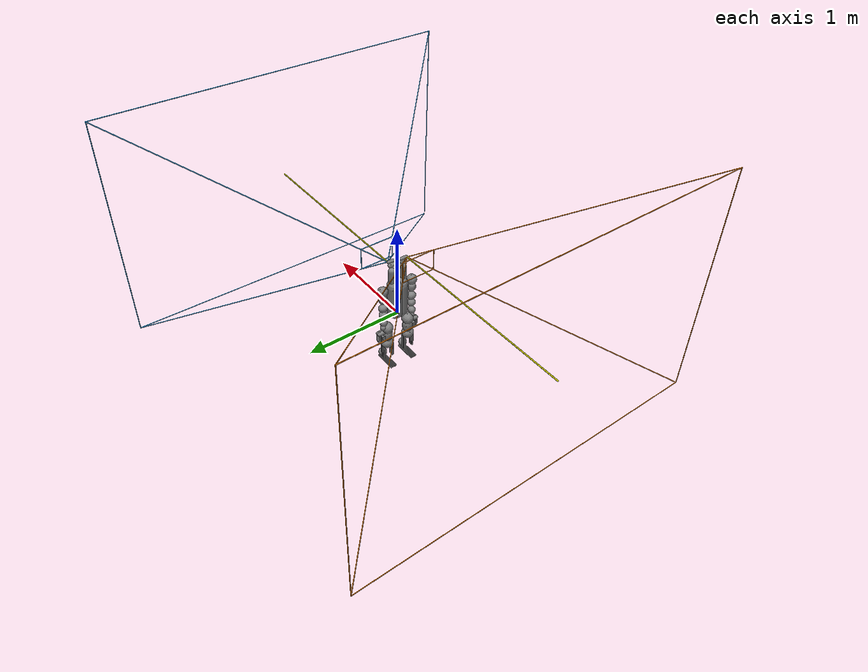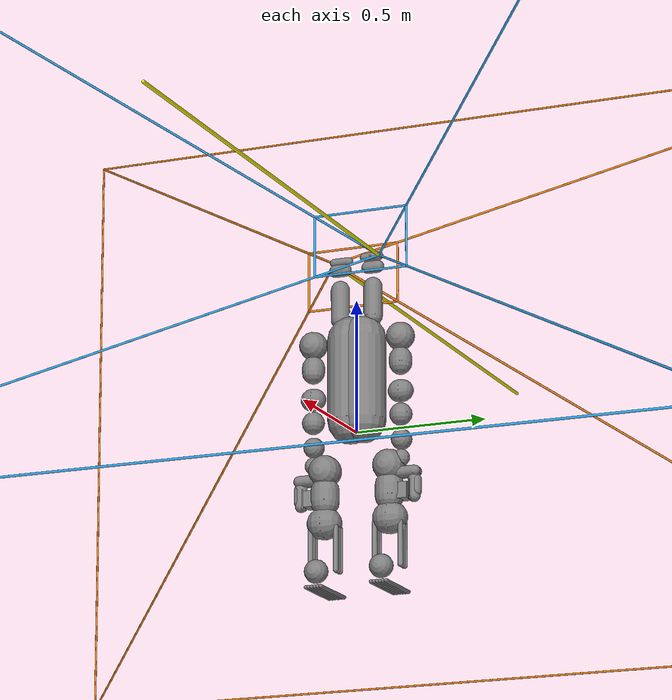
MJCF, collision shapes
<mujoco model="humanoid_v2">
  <compiler angle="radian" meshdir="../../../../asset/create/meshes"/>

  <default>
    <default class="humanoid_v2">
      <default class="visual">
        <geom type="mesh" contype="0" conaffinity="0" group="2" material="silver"/>
      </default>
      <default class="collision">
        <geom group="3"/>
      </default>
    </default>
    <default class="L_main">
      <default class="L_parallel_gripper">
        <default class="L_visual">
          <geom type="mesh" contype="0" conaffinity="0" group="2" material="silver"/>
        </default>
        <default class="L_collision">
          <geom group="3"/>
        </default>
      </default>
    </default>
    <default class="R_main">
      <default class="R_parallel_gripper">
        <default class="R_visual">
          <geom type="mesh" contype="0" conaffinity="0" group="2" material="silver"/>
        </default>
        <default class="R_collision">
          <geom group="3"/>
        </default>
      </default>
    </default>
    <default class="cam_main">
      <default class="cam_head_camera_dual">
        <default class="cam_visual">
          <geom type="mesh" contype="0" conaffinity="0" group="2" material="silver"/>
        </default>
        <default class="cam_collision">
          <geom group="3"/>
        </default>
      </default>
    </default>
  </default>

  <asset>
    <texture type="2d" colorspace="linear" name="L_tag_80_tex" file="../../../../asset/duke_v2/parallel_gripper/meshes/tags/tag_80.png"/>
    <texture type="2d" colorspace="linear" name="L_tag_81_tex" file="../../../../asset/duke_v2/parallel_gripper/meshes/tags/tag_81.png"/>
    <texture type="2d" colorspace="linear" name="L_tag_82_tex" file="../../../../asset/duke_v2/parallel_gripper/meshes/tags/tag_82.png"/>
    <texture type="2d" colorspace="linear" name="L_tag_83_tex" file="../../../../asset/duke_v2/parallel_gripper/meshes/tags/tag_83.png"/>
    <texture type="2d" colorspace="linear" name="L_tag_84_tex" file="../../../../asset/duke_v2/parallel_gripper/meshes/tags/tag_84.png"/>
    <texture type="2d" colorspace="linear" name="L_tag_85_tex" file="../../../../asset/duke_v2/parallel_gripper/meshes/tags/tag_85.png"/>
    <texture type="2d" colorspace="linear" name="L_tag_86_tex" file="../../../../asset/duke_v2/parallel_gripper/meshes/tags/tag_86.png"/>
    <texture type="2d" colorspace="linear" name="L_tag_87_tex" file="../../../../asset/duke_v2/parallel_gripper/meshes/tags/tag_87.png"/>
    <texture type="2d" colorspace="linear" name="R_tag_90_tex" file="../../../../asset/duke_v2/parallel_gripper/meshes/tags/tag_90.png"/>
    <texture type="2d" colorspace="linear" name="R_tag_91_tex" file="../../../../asset/duke_v2/parallel_gripper/meshes/tags/tag_91.png"/>
    <texture type="2d" colorspace="linear" name="R_tag_92_tex" file="../../../../asset/duke_v2/parallel_gripper/meshes/tags/tag_92.png"/>
    <texture type="2d" colorspace="linear" name="R_tag_93_tex" file="../../../../asset/duke_v2/parallel_gripper/meshes/tags/tag_93.png"/>
    <texture type="2d" colorspace="linear" name="R_tag_94_tex" file="../../../../asset/duke_v2/parallel_gripper/meshes/tags/tag_94.png"/>
    <texture type="2d" colorspace="linear" name="R_tag_95_tex" file="../../../../asset/duke_v2/parallel_gripper/meshes/tags/tag_95.png"/>
    <texture type="2d" colorspace="linear" name="R_tag_96_tex" file="../../../../asset/duke_v2/parallel_gripper/meshes/tags/tag_96.png"/>
    <texture type="2d" colorspace="linear" name="R_tag_97_tex" file="../../../../asset/duke_v2/parallel_gripper/meshes/tags/tag_97.png"/>
    <material name="silver" rgba="0.75 0.75 0.75 1"/>
    <material name="blue" rgba="0 0 0.8 1"/>
    <material name="black" rgba="0 0 0 1"/>
    <material name="purple" rgba="0.8 0 0.8 1"/>
    <material name="light_grey" rgba="0.4 0.4 0.4 1"/>
    <material name="dark_grey" rgba="0.3 0.3 0.3 1"/>
    <material name="white"/>
    <material name="L_silver" rgba="0.75 0.75 0.75 1"/>
    <material name="L_base_mat" rgba="0.75 0.75 0.75 1"/>
    <material name="L_left_rack_mat" rgba="0.3 0.55 0.85 1"/>
    <material name="L_right_rack_mat" rgba="0.65 0.4 0.8 1"/>
    <material name="L_tag_80_mat" texture="L_tag_80_tex" specular="0" shininess="0"/>
    <material name="L_tag_81_mat" texture="L_tag_81_tex" specular="0" shininess="0"/>
    <material name="L_tag_82_mat" texture="L_tag_82_tex" specular="0" shininess="0"/>
    <material name="L_tag_83_mat" texture="L_tag_83_tex" specular="0" shininess="0"/>
    <material name="L_tag_84_mat" texture="L_tag_84_tex" specular="0" shininess="0"/>
    <material name="L_tag_85_mat" texture="L_tag_85_tex" specular="0" shininess="0"/>
    <material name="L_tag_86_mat" texture="L_tag_86_tex" specular="0" shininess="0"/>
    <material name="L_tag_87_mat" texture="L_tag_87_tex" specular="0" shininess="0"/>
    <material name="R_silver" rgba="0.75 0.75 0.75 1"/>
    <material name="R_base_mat" rgba="0.75 0.75 0.75 1"/>
    <material name="R_left_rack_mat" rgba="0.3 0.55 0.85 1"/>
    <material name="R_right_rack_mat" rgba="0.65 0.4 0.8 1"/>
    <material name="R_tag_90_mat" texture="R_tag_90_tex" specular="0" shininess="0"/>
    <material name="R_tag_91_mat" texture="R_tag_91_tex" specular="0" shininess="0"/>
    <material name="R_tag_92_mat" texture="R_tag_92_tex" specular="0" shininess="0"/>
    <material name="R_tag_93_mat" texture="R_tag_93_tex" specular="0" shininess="0"/>
    <material name="R_tag_94_mat" texture="R_tag_94_tex" specular="0" shininess="0"/>
    <material name="R_tag_95_mat" texture="R_tag_95_tex" specular="0" shininess="0"/>
    <material name="R_tag_96_mat" texture="R_tag_96_tex" specular="0" shininess="0"/>
    <material name="R_tag_97_mat" texture="R_tag_97_tex" specular="0" shininess="0"/>
    <material name="cam_silver" rgba="0.75 0.75 0.75 1"/>
    <material name="cam_blue" rgba="0 0 0.8 1"/>
    <material name="cam_black" rgba="0 0 0 1"/>
    <material name="cam_purple" rgba="0.8 0 0.8 1"/>
    <material name="cam_light_grey" rgba="0.4 0.4 0.4 1"/>
    <material name="cam_dark_grey" rgba="0.3 0.3 0.3 1"/>
    <material name="cam_white"/>
    <mesh name="base_link" file="base_link.stl" scale="0.001 0.001 0.001"/>
    <mesh name="waist_high_res" content_type="model/obj" file="waist.obj" scale="0.001 0.001 0.001"/>
    <mesh name="hip_2_high_res" file="hip_2.obj" scale="0.001 0.001 0.001"/>
    <mesh name="hip_3_high_res" file="hip_3.obj" scale="0.001 0.001 0.001"/>
    <mesh name="knee_high_res" content_type="model/obj" file="knee.obj" scale="0.001 0.001 0.001"/>
    <mesh name="shank_high_res" file="shank.obj" scale="0.001 0.001 0.001"/>
    <mesh name="ankle_1_high_res" file="ankle_1.obj" scale="0.001 0.001 0.001"/>
    <mesh name="ankle_2_high_res" file="ankle_2.obj" scale="0.001 0.001 0.001"/>
    <mesh name="shoulder_2_high_res" file="shoulder_2.obj" scale="0.001 0.001 0.001"/>
    <mesh name="shoulder_3" file="shoulder_3.obj" scale="0.001 0.001 0.001"/>
    <mesh name="elbow_high_res" file="elbow.obj" scale="0.001 0.001 0.001"/>
    <mesh name="wrist_1_high_res" file="wrist_1.obj" scale="0.001 0.001 0.001"/>
    <mesh name="wrist_2_high_res" file="wrist_2.obj" scale="0.001 0.001 0.001"/>
    <mesh name="wrist_3_high_res" file="wrist_3.obj" scale="0.001 0.001 0.001"/>
    <mesh name="end_effector_attachment_high_res" file="end_effector_attachment.obj" scale="0.001 0.001 0.001"/>
    <mesh name="L_base" file="../../duke_v2/parallel_gripper/meshes/base.obj" scale="0.001 0.001 0.001"/>
    <mesh name="L_left_rack" file="../../duke_v2/parallel_gripper/meshes/left_rack.obj" scale="0.001 0.001 0.001"/>
    <mesh name="L_right_rack" file="../../duke_v2/parallel_gripper/meshes/right_rack.obj" scale="0.001 0.001 0.001"/>
    <mesh name="L_tag_80_quad" file="../../duke_v2/parallel_gripper/meshes/tags/tag_80.obj" inertia="shell" scale="0.001 0.001 0.001"/>
    <mesh name="L_tag_81_quad" file="../../duke_v2/parallel_gripper/meshes/tags/tag_81.obj" inertia="shell" scale="0.001 0.001 0.001"/>
    <mesh name="L_tag_82_quad" file="../../duke_v2/parallel_gripper/meshes/tags/tag_82.obj" inertia="shell" scale="0.001 0.001 0.001"/>
    <mesh name="L_tag_83_quad" file="../../duke_v2/parallel_gripper/meshes/tags/tag_83.obj" inertia="shell" scale="0.001 0.001 0.001"/>
    <mesh name="L_tag_84_quad" file="../../duke_v2/parallel_gripper/meshes/tags/tag_84.obj" inertia="shell" scale="0.001 0.001 0.001"/>
    <mesh name="L_tag_85_quad" file="../../duke_v2/parallel_gripper/meshes/tags/tag_85.obj" inertia="shell" scale="0.001 0.001 0.001"/>
    <mesh name="L_tag_86_quad" file="../../duke_v2/parallel_gripper/meshes/tags/tag_86.obj" inertia="shell" scale="0.001 0.001 0.001"/>
    <mesh name="L_tag_87_quad" file="../../duke_v2/parallel_gripper/meshes/tags/tag_87.obj" inertia="shell" scale="0.001 0.001 0.001"/>
    <mesh name="R_base" file="../../duke_v2/parallel_gripper/meshes/base.obj" scale="0.001 0.001 0.001"/>
    <mesh name="R_left_rack" file="../../duke_v2/parallel_gripper/meshes/left_rack.obj" scale="0.001 0.001 0.001"/>
    <mesh name="R_right_rack" file="../../duke_v2/parallel_gripper/meshes/right_rack.obj" scale="0.001 0.001 0.001"/>
    <mesh name="R_tag_90_quad" file="../../duke_v2/parallel_gripper/meshes/tags/tag_90.obj" inertia="shell" scale="0.001 0.001 0.001"/>
    <mesh name="R_tag_91_quad" file="../../duke_v2/parallel_gripper/meshes/tags/tag_91.obj" inertia="shell" scale="0.001 0.001 0.001"/>
    <mesh name="R_tag_92_quad" file="../../duke_v2/parallel_gripper/meshes/tags/tag_92.obj" inertia="shell" scale="0.001 0.001 0.001"/>
    <mesh name="R_tag_93_quad" file="../../duke_v2/parallel_gripper/meshes/tags/tag_93.obj" inertia="shell" scale="0.001 0.001 0.001"/>
    <mesh name="R_tag_94_quad" file="../../duke_v2/parallel_gripper/meshes/tags/tag_94.obj" inertia="shell" scale="0.001 0.001 0.001"/>
    <mesh name="R_tag_95_quad" file="../../duke_v2/parallel_gripper/meshes/tags/tag_95.obj" inertia="shell" scale="0.001 0.001 0.001"/>
    <mesh name="R_tag_96_quad" file="../../duke_v2/parallel_gripper/meshes/tags/tag_96.obj" inertia="shell" scale="0.001 0.001 0.001"/>
    <mesh name="R_tag_97_quad" file="../../duke_v2/parallel_gripper/meshes/tags/tag_97.obj" inertia="shell" scale="0.001 0.001 0.001"/>
    <mesh name="cam_base_left" file="../../duke_v2/head_cam/meshes/links/base_left.obj" scale="0.001 0.001 0.001"/>
    <mesh name="cam_yaw_left" file="../../duke_v2/head_cam/meshes/links/yaw_left.obj" scale="0.001 0.001 0.001"/>
    <mesh name="cam_pitch_left" file="../../duke_v2/head_cam/meshes/links/pitch_left.obj" scale="0.001 0.001 0.001"/>
  </asset>

  <worldbody>
    <body name="base_link" childclass="humanoid_v2">
      <inertial pos="-0.00741636 4.16161e-05 0.186843" quat="8.35609e-05 0.718034 -0.000326247 0.696008" mass="9.30291" diaginertia="0.0347794 0.173949 0.189052"/>
      <joint name="floating_base_joint" type="free"/>
      <geom name="base_link_visual" class="visual" material="dark_grey" mesh="base_link"/>
      <geom name="base_link_collision0" class="collision" size="0.0848538 0.155146" pos="0 -0.0249986 0.2" type="capsule"/>
      <geom name="base_link_collision1" class="collision" size="0.0848538 0.155146" pos="0 0.0249986 0.2" type="capsule"/>
      <site name="imu_site" pos="0 0 0"/>
      <camera name="tracking" pos="1.5 -1.5 1" quat="0.780227 0.494771 0.204941 0.323181" mode="trackcom"/>
      <light pos="0 0 2" dir="0 0 -1" mode="trackcom"/>
      <body name="waist" pos="0 0 -0.0361">
        <inertial pos="-0.00238207 4.63475e-07 -0.0704721" quat="-0.43413 0.558388 0.558062 -0.433936" mass="2.31937" diaginertia="0.00376271 0.00529885 0.00558094"/>
        <joint name="waist_joint" pos="0 0 0" axis="0 0 1" range="-1.5708 1.5708" frictionloss="0.2"/>
        <geom name="waist_visual" class="visual" material="dark_grey" mesh="waist_high_res"/>
        <body name="hip_2_L" pos="0 0.059946 -0.081628" quat="0.793353 0.608761 0 0">
          <inertial pos="0.000349087 -2.18694e-05 -0.061261" quat="-0.459691 0.45664 0.540342 0.536837" mass="1.2527" diaginertia="0.00138225 0.00185815 0.00192888"/>
          <joint name="left_hip_1_joint" pos="0 0 0" axis="0 0 1" range="-1.8326 1.8326" frictionloss="0.2"/>
          <geom name="hip_2_L_visual" class="visual" material="light_grey" mesh="hip_2_high_res"/>
          <geom name="hip_2_L_collision" class="collision" size="0.06 0.005" pos="0.0006 0 -0.069" quat="0.701057 0.092296 -0.701057 -0.092296" type="capsule"/>
          <body name="hip_3_L" pos="0.0287 0 -0.0691" quat="0.701057 0.092296 -0.701057 -0.092296">
            <inertial pos="2.07731e-05 -0.0770614 0.0307231" quat="0.519071 -0.480255 -0.51929 0.479853" mass="1.29734" diaginertia="0.00175068 0.00229469 0.00271565"/>
            <joint name="left_hip_2_joint" pos="0 0 0" axis="0 0 1" range="-1.8326 0.523599" frictionloss="0.5"/>
            <geom name="hip_3_L_visual" class="visual" material="dark_grey" mesh="hip_3_high_res"/>
            <geom name="hip_3_L_collision" class="collision" size="0.053 0.021" pos="0 -0.0945 0.0287" quat="0.707107 -0.707107 0 0" type="capsule"/>
            <body name="knee_L" pos="0 -0.1156 0.0287" quat="0.707107 -0.707107 0 0">
              <inertial pos="0.0014826 8.41853e-05 -0.0736603" quat="0.69186 -0.00337258 -0.722024 0.00022525" mass="1.84214" diaginertia="0.00190901 0.00264702 0.00341994"/>
              <joint name="left_hip_3_joint" pos="0 0 0" axis="0 0 1" range="-1.5708 1.5708" frictionloss="0.2"/>
              <geom name="knee_L_visual" class="visual" material="light_grey" mesh="knee_high_res"/>
              <geom name="knee_L_collision" class="collision" size="0.06 0.005" pos="-0.00225 0 -0.0795" quat="0.5 -0.5 -0.5 0.5" type="capsule"/>
              <body name="shank_L" pos="0.0255 0 -0.0795" quat="0.5 -0.5 -0.5 0.5">
                <inertial pos="8.59033e-07 0.0943751 0.0229906" quat="-0.498686 -0.5013 0.498696 0.501311" mass="0.753289" diaginertia="0.00154563 0.00486086 0.00599117"/>
                <joint name="left_knee_joint" pos="0 0 0" axis="0 0 1" range="-2.26893 2.26893" frictionloss="0.5"/>
                <geom name="shank_L_visual" class="visual" material="dark_grey" mesh="shank_high_res"/>
                <geom name="shank_L_collision0" class="collision" size="0.01 0.08" pos="-0.02 0.1 -0.025" quat="0.707107 -0.707107 0 0" type="capsule"/>
                <geom name="shank_L_collision1" class="collision" size="0.01 0.08" pos="0 0.1 -0.025" quat="0.707107 -0.707107 0 0" type="capsule"/>
                <geom name="shank_L_collision2" class="collision" size="0.01 0.08" pos="0.02 0.1 -0.025" quat="0.707107 -0.707107 0 0" type="capsule"/>
                <geom name="shank_L_collision3" class="collision" size="0.01 0.08" pos="-0.02 0.1 0.075" quat="0.707107 -0.707107 0 0" type="capsule"/>
                <geom name="shank_L_collision4" class="collision" size="0.01 0.08" pos="0 0.1 0.075" quat="0.707107 -0.707107 0 0" type="capsule"/>
                <geom name="shank_L_collision5" class="collision" size="0.01 0.08" pos="0.02 0.1 0.075" quat="0.707107 -0.707107 0 0" type="capsule"/>
                <body name="ankle_1_L" pos="0 0.195 0" quat="0 0 1 0">
                  <inertial pos="-0.0305888 -1.59279e-05 -0.025774" quat="0.999999 0.00120435 0.000389805 -0.000123663" mass="1.80186" diaginertia="0.00144542 0.00421361 0.00443807"/>
                  <joint name="left_ankle_1_joint" pos="0 0 0" axis="0 0 1" range="-0.872665 0.872665" frictionloss="0.2"/>
                  <geom name="ankle_1_L_visual" class="visual" material="light_grey" mesh="ankle_1_high_res"/>
                  <geom name="ankle_1_L_collision" class="collision" size="0.044 0.0005" pos="-0.08275 0 -0.0255" quat="0.707107 0 0.707107 0" type="capsule"/>
                  <body name="foot_L" pos="-0.1 0 -0.0255" quat="0.5 -0.5 0.5 -0.5">
                    <inertial pos="-0.0374774 8.96073e-10 0.0957522" quat="0.489663 0.489663 -0.510128 0.510128" mass="0.506071" diaginertia="0.00061045 0.00341987 0.00361595"/>
                    <joint name="left_ankle_2_joint" pos="0 0 0" axis="0 0 1" range="-1.0472 1.0472" frictionloss="0.5"/>
                    <geom name="foot_L_visual" class="visual" mesh="ankle_2_high_res"/>
                    <geom name="foot_L_collision0" class="collision" size="0.007 0.1105" pos="-0.061 -0.029 0.1" type="capsule"/>
                    <geom name="foot_L_collision1" class="collision" size="0.007 0.1105" pos="-0.061 -0.0174 0.1" type="capsule"/>
                    <geom name="foot_L_collision2" class="collision" size="0.007 0.1105" pos="-0.061 -0.0058 0.1" type="capsule"/>
                    <geom name="foot_L_collision3" class="collision" size="0.007 0.1105" pos="-0.061 0.0058 0.1" type="capsule"/>
                    <geom name="foot_L_collision4" class="collision" size="0.007 0.1105" pos="-0.061 0.0174 0.1" type="capsule"/>
                    <geom name="foot_L_collision5" class="collision" size="0.007 0.1105" pos="-0.061 0.029 0.1" type="capsule"/>
                    <site name="foot_L_contact" pos="-0.061 0 0.1"/>
                  </body>
                </body>
              </body>
            </body>
          </body>
        </body>
        <body name="hip_2_R" pos="0 -0.059946 -0.081628" quat="0.793353 -0.608761 0 0">
          <inertial pos="0.000349087 -2.18694e-05 -0.061261" quat="-0.459691 0.45664 0.540342 0.536837" mass="1.2527" diaginertia="0.00138225 0.00185815 0.00192888"/>
          <joint name="right_hip_1_joint" pos="0 0 0" axis="0 0 1" range="-1.8326 1.8326" frictionloss="0.2"/>
          <geom name="hip_2_R_visual" class="visual" material="light_grey" mesh="hip_2_high_res"/>
          <geom name="hip_2_R_collision" class="collision" size="0.06 0.005" pos="0.0006 0 -0.069" quat="0.701057 0.092296 -0.701057 -0.092296" type="capsule"/>
          <body name="hip_3_R" pos="0.0287 0 -0.0691" quat="0.092296 0.701057 -0.092296 -0.701057">
            <inertial pos="2.07731e-05 -0.0770614 0.0307231" quat="0.519071 -0.480255 -0.51929 0.479853" mass="1.29734" diaginertia="0.00175068 0.00229469 0.00271565"/>
            <joint name="right_hip_2_joint" pos="0 0 0" axis="0 0 1" range="-0.523599 1.8326" frictionloss="0.5"/>
            <geom name="hip_3_R_visual" class="visual" material="dark_grey" mesh="hip_3_high_res"/>
            <geom name="hip_3_R_collision" class="collision" size="0.053 0.021" pos="0 -0.0945 0.0287" quat="0.707107 -0.707107 0 0" type="capsule"/>
            <body name="knee_R" pos="0 -0.1156 0.0287" quat="0 0 0.707107 0.707107">
              <inertial pos="0.0014826 8.41853e-05 -0.0736603" quat="0.69186 -0.00337258 -0.722024 0.00022525" mass="1.84214" diaginertia="0.00190901 0.00264702 0.00341994"/>
              <joint name="right_hip_3_joint" pos="0 0 0" axis="0 0 1" range="-1.5708 1.5708" frictionloss="0.2"/>
              <geom name="knee_R_visual" class="visual" material="light_grey" mesh="knee_high_res"/>
              <geom name="knee_R_collision" class="collision" size="0.06 0.005" pos="-0.00225 0 -0.0795" quat="0.5 -0.5 -0.5 0.5" type="capsule"/>
              <body name="shank_R" pos="0.0255 0 -0.0795" quat="0.5 -0.5 -0.5 0.5">
                <inertial pos="8.59033e-07 0.0943751 0.0229906" quat="-0.498686 -0.5013 0.498696 0.501311" mass="0.753289" diaginertia="0.00154563 0.00486086 0.00599117"/>
                <joint name="right_knee_joint" pos="0 0 0" axis="0 0 1" range="-2.26893 2.26893" frictionloss="0.5"/>
                <geom name="shank_R_visual" class="visual" material="dark_grey" mesh="shank_high_res"/>
                <geom name="shank_R_collision0" class="collision" size="0.01 0.08" pos="-0.02 0.1 -0.025" quat="0.707107 -0.707107 0 0" type="capsule"/>
                <geom name="shank_R_collision1" class="collision" size="0.01 0.08" pos="0 0.1 -0.025" quat="0.707107 -0.707107 0 0" type="capsule"/>
                <geom name="shank_R_collision2" class="collision" size="0.01 0.08" pos="0.02 0.1 -0.025" quat="0.707107 -0.707107 0 0" type="capsule"/>
                <geom name="shank_R_collision3" class="collision" size="0.01 0.08" pos="-0.02 0.1 0.075" quat="0.707107 -0.707107 0 0" type="capsule"/>
                <geom name="shank_R_collision4" class="collision" size="0.01 0.08" pos="0 0.1 0.075" quat="0.707107 -0.707107 0 0" type="capsule"/>
                <geom name="shank_R_collision5" class="collision" size="0.01 0.08" pos="0.02 0.1 0.075" quat="0.707107 -0.707107 0 0" type="capsule"/>
                <body name="ankle_1_R" pos="0 0.195 0" quat="0 -1 0 0">
                  <inertial pos="-0.0305888 -1.59279e-05 -0.025774" quat="0.999999 0.00120435 0.000389805 -0.000123663" mass="1.80186" diaginertia="0.00144542 0.00421361 0.00443807"/>
                  <joint name="right_ankle_1_joint" pos="0 0 0" axis="0 0 1" range="-0.872665 0.872665" frictionloss="0.2"/>
                  <geom name="ankle_1_R_visual" class="visual" material="light_grey" mesh="ankle_1_high_res"/>
                  <geom name="ankle_1_R_collision" class="collision" size="0.044 0.0005" pos="-0.08275 0 -0.0255" quat="0.707107 0 0.707107 0" type="capsule"/>
                  <body name="foot_R" pos="-0.1 0 -0.0255" quat="0.5 0.5 0.5 0.5">
                    <inertial pos="-0.0374774 8.96073e-10 0.0957522" quat="0.489663 0.489663 -0.510128 0.510128" mass="0.506071" diaginertia="0.00061045 0.00341987 0.00361595"/>
                    <joint name="right_ankle_2_joint" pos="0 0 0" axis="0 0 1" range="-1.0472 1.0472" frictionloss="0.5"/>
                    <geom name="foot_R_visual" class="visual" mesh="ankle_2_high_res"/>
                    <geom name="foot_R_collision0" class="collision" size="0.007 0.1105" pos="-0.061 -0.029 0.1" type="capsule"/>
                    <geom name="foot_R_collision1" class="collision" size="0.007 0.1105" pos="-0.061 -0.0174 0.1" type="capsule"/>
                    <geom name="foot_R_collision2" class="collision" size="0.007 0.1105" pos="-0.061 -0.0058 0.1" type="capsule"/>
                    <geom name="foot_R_collision3" class="collision" size="0.007 0.1105" pos="-0.061 0.0058 0.1" type="capsule"/>
                    <geom name="foot_R_collision4" class="collision" size="0.007 0.1105" pos="-0.061 0.0174 0.1" type="capsule"/>
                    <geom name="foot_R_collision5" class="collision" size="0.007 0.1105" pos="-0.061 0.029 0.1" type="capsule"/>
                    <site name="foot_R_contact" pos="-0.061 0 0.1"/>
                  </body>
                </body>
              </body>
            </body>
          </body>
        </body>
      </body>
      <body name="shoulder_2_L" pos="0 0.083 0.3475" quat="0.707107 0.707107 0 0">
        <inertial pos="0.000787068 -5.71455e-07 -0.0730081" quat="0.677536 -4.15531e-05 -0.73549 -2.98517e-05" mass="0.903097" diaginertia="0.000555624 0.00146696 0.00153275"/>
        <joint name="left_shoulder_1_joint" pos="0 0 0" axis="0 0 1" range="-3.14159 3.14159" frictionloss="0.5"/>
        <geom name="shoulder_2_L_visual" class="visual" material="dark_grey" mesh="shoulder_2_high_res"/>
        <geom name="shoulder_2_L_collision" class="collision" size="0.053 5e-05" pos="0 0 -0.09" quat="0.707107 0 0.707107 0" type="capsule"/>
        <body name="shoulder_3_L" pos="0.02475 0 -0.09" quat="0.707107 0 -0.707107 0">
          <inertial pos="0.000428244 -0.0657202 0.0269038" quat="0.504716 -0.493242 -0.493187 0.508665" mass="0.716054" diaginertia="0.000675965 0.00100372 0.00122933"/>
          <joint name="left_shoulder_2_joint" pos="0 0 0" axis="0 0 1" range="-3.14159 0.523599" frictionloss="0.2"/>
          <geom name="shoulder_3_L_visual" class="visual" material="light_grey" mesh="shoulder_3"/>
          <geom name="shoulder_3_L_collision" class="collision" size="0.042 0.01" pos="0 -0.093 0.02475" quat="0.707107 0.707107 0 0" type="capsule"/>
          <body name="elbow_L" pos="0 -0.096 0.02475" quat="0 0 0.707107 0.707107">
            <inertial pos="0.00165016 0.0024442 -0.0943709" quat="0.086108 0.734796 0.00554098 -0.672778" mass="0.649565" diaginertia="0.000376826 0.000924704 0.00107426"/>
            <joint name="left_shoulder_3_joint" pos="0 0 0" axis="0 0 1" range="-3.14159 3.14159" frictionloss="0.1"/>
            <geom name="elbow_L_visual" class="visual" material="dark_grey" mesh="elbow_high_res"/>
            <geom name="elbow_L_collision" class="collision" size="0.042 0.005" pos="0 0 -0.111" quat="0.707107 0 0.707107 0" type="capsule"/>
            <body name="wrist_1_L" pos="0.0235 0 -0.111" quat="0.5 0.5 -0.5 -0.5">
              <inertial pos="-0.00103716 -0.0654356 0.0259865" quat="-0.468608 -0.528252 0.455475 0.542124" mass="0.745203" diaginertia="0.000755792 0.00109681 0.00130049"/>
              <joint name="left_elbow_joint" pos="0 0 0" axis="0 0 1" range="-2.18166 2.18166" frictionloss="0.1"/>
              <geom name="wrist_1_L_visual" class="visual" material="light_grey" mesh="wrist_1_high_res"/>
              <geom name="wrist_1_L_collision" class="collision" size="0.042 5e-05" pos="0 -0.0885 0.0235" quat="0.707107 0.707107 0 0" type="capsule"/>
              <body name="wrist_2_L" pos="0 -0.096 0.0235" quat="0.707107 -0.707107 0 0">
                <inertial pos="-0.00806868 -0.000653127 -0.0770993" quat="0.552446 0.408031 0.604463 -0.403656" mass="0.433004" diaginertia="0.000201894 0.000378848 0.000404228"/>
                <joint name="left_wrist_1_joint" pos="0 0 0" axis="0 0 1" range="-3.14159 3.14159" frictionloss="0.1"/>
                <geom name="wrist_2_L_visual" class="visual" material="white" mesh="wrist_2_high_res"/>
                <geom name="wrist_2_L_collision" class="collision" size="0.038 0.0025" pos="-0.0059 0 -0.0855" quat="0.707107 0 0.707107 0" type="capsule"/>
                <body name="wrist_3_L" pos="0.0145 0 -0.0855" quat="0.5 0.5 -0.5 -0.5">
                  <inertial pos="7.39353e-05 -0.0474309 0.00779671" quat="0.100665 0.702039 0.698867 -0.0926992" mass="0.31119" diaginertia="9.37068e-05 0.000277657 0.000288899"/>
                  <joint name="left_wrist_2_joint" pos="0 0 0" axis="0 0 1" range="-2.00713 2.00713" frictionloss="0.05"/>
                  <geom name="wrist_3_L_visual" class="visual" material="light_grey" mesh="wrist_3_high_res"/>
                  <geom name="wrist_3_L_collision" class="collision" size="0.032 5e-05" pos="0 -0.07 0.0145" quat="0.707107 0.707107 0 0" type="capsule"/>
                  <body name="end_effector_L" pos="0 -0.079 0.0145" quat="0 -0.707107 0.707107 0">
                    <inertial pos="0.00497 -9.004e-09 6.193e-10" quat="0.707107 0 0.707107 0" mass="0.04111" diaginertia="5.748e-06 6.047e-06 8.902e-06"/>
                    <joint name="left_wrist_3_joint" pos="0 0 0" axis="-1 0 0" ref="-1.5708" range="-3.14159 3.14159" frictionloss="0.05"/>
                    <geom name="end_effector_L_visual" class="visual" material="white" mesh="end_effector_attachment_high_res"/>
                    <site name="end_effector_L_site" pos="0.11764 0.00096 0"/><geom name="cube_L" type="box" size="0.03 0.03 0.03" pos="0.11764 0.00096 0" contype="1" conaffinity="1" group="3" density="100"/>
                    <body name="L_base" childclass="L_parallel_gripper" pos="0.032 -0.006 0.01">
                      <inertial pos="0.000733468 0.0119563 -0.00964551" quat="0.725257 0.023573 0.00705184 -0.688038" mass="0.171609" diaginertia="4.99918e-05 0.000207737 0.000223325"/>
                      <geom name="L_base_visual" class="L_visual" material="L_base_mat" mesh="L_base"/>
                      <geom name="L_tag_84" type="mesh" contype="0" conaffinity="0" group="2" material="L_tag_84_mat" mesh="L_tag_84_quad"/>
                      <geom name="L_tag_85" type="mesh" contype="0" conaffinity="0" group="2" material="L_tag_85_mat" mesh="L_tag_85_quad"/>
                      <geom name="L_tag_86" type="mesh" contype="0" conaffinity="0" group="2" material="L_tag_86_mat" mesh="L_tag_86_quad"/>
                      <geom name="L_tag_87" type="mesh" contype="0" conaffinity="0" group="2" material="L_tag_87_mat" mesh="L_tag_87_quad"/>
                      <body name="L_left_rack">
                        <inertial pos="0.0462025 -0.0220002 -0.00385734" quat="-0.0935321 0.426555 0.899548 0.0108181" mass="0.0743656" diaginertia="4.74015e-05 0.00012138 0.000153873"/>
                        <geom name="L_left_rack_visual" class="L_visual" material="L_left_rack_mat" mesh="L_left_rack"/>
                        <geom name="L_left_rack_collision0" class="L_collision" size="0.005 0.0358" pos="0.0808 -0.033 -0.025" quat="0.707107 0 0.707107 0" type="capsule" conaffinity="0" friction="0.5" solref="0.005"/>
                        <geom name="L_left_rack_collision1" class="L_collision" size="0.005 0.0358" pos="0.0808 -0.033 -0.015" quat="0.707107 0 0.707107 0" type="capsule" conaffinity="0" friction="0.5" solref="0.005"/>
                        <geom name="L_left_rack_collision2" class="L_collision" size="0.005 0.0358" pos="0.0808 -0.033 -0.005" quat="0.707107 0 0.707107 0" type="capsule" conaffinity="0" friction="0.5" solref="0.005"/>
                        <geom name="L_left_rack_collision3" class="L_collision" size="0.005 0.0358" pos="0.0808 -0.033 0.005" quat="0.707107 0 0.707107 0" type="capsule" conaffinity="0" friction="0.5" solref="0.005"/>
                        <geom name="L_left_rack_collision4" class="L_collision" size="0.021 0.0225" pos="0.0675 -0.049 -0.01" quat="0.707107 0 0.707107 0" type="capsule" conaffinity="0" friction="0.5" solref="0.005"/>
                        <geom name="L_left_rack_collision5" class="L_collision" size="0.021 0.054" pos="0.015 0.0075 0" quat="0.707107 -0.707107 0 0" type="capsule" conaffinity="0" friction="0.5" solref="0.005"/>
                        <geom name="L_left_rack_ikproxy" class="L_collision" size="0.0226 0.0458" pos="0.0608 -0.0422 -0.01" quat="0.707107 0 0.707107 0" type="capsule" contype="0" conaffinity="0" group="5" friction="0.5" solref="0.005"/>
                        <geom name="L_tag_80" type="mesh" contype="0" conaffinity="0" group="2" material="L_tag_80_mat" mesh="L_tag_80_quad"/>
                        <geom name="L_tag_81" type="mesh" contype="0" conaffinity="0" group="2" material="L_tag_81_mat" mesh="L_tag_81_quad"/>
                      </body>
                      <body name="L_right_rack">
                        <inertial pos="0.0461618 0.0359459 -0.0161427" quat="-0.0107055 0.899312 0.427027 0.0936506" mass="0.0743656" diaginertia="4.73679e-05 0.000121196 0.000153672"/>
                        <geom name="L_right_rack_visual" class="L_visual" material="L_right_rack_mat" mesh="L_right_rack"/>
                        <geom name="L_right_rack_collision0" class="L_collision" size="0.005 0.0358" pos="0.0808 0.0469 -0.025" quat="0.707107 0 0.707107 0" type="capsule" conaffinity="0" friction="0.5" solref="0.005"/>
                        <geom name="L_right_rack_collision1" class="L_collision" size="0.005 0.0358" pos="0.0808 0.0469 -0.015" quat="0.707107 0 0.707107 0" type="capsule" conaffinity="0" friction="0.5" solref="0.005"/>
                        <geom name="L_right_rack_collision2" class="L_collision" size="0.005 0.0358" pos="0.0808 0.0469 -0.005" quat="0.707107 0 0.707107 0" type="capsule" conaffinity="0" friction="0.5" solref="0.005"/>
                        <geom name="L_right_rack_collision3" class="L_collision" size="0.005 0.0358" pos="0.0808 0.0469 0.005" quat="0.707107 0 0.707107 0" type="capsule" conaffinity="0" friction="0.5" solref="0.005"/>
                        <geom name="L_right_rack_collision4" class="L_collision" size="0.021 0.0225" pos="0.0675 0.0629 -0.01" quat="0.707107 0 0.707107 0" type="capsule" conaffinity="0" friction="0.5" solref="0.005"/>
                        <geom name="L_right_rack_collision5" class="L_collision" size="0.021 0.054" pos="0.015 0.0064 -0.02" quat="0.707107 -0.707107 0 0" type="capsule" conaffinity="0" friction="0.5" solref="0.005"/>
                        <geom name="L_right_rack_ikproxy" class="L_collision" size="0.0226 0.0458" pos="0.0608 0.0561 -0.01" quat="0.707107 0 0.707107 0" type="capsule" contype="0" conaffinity="0" group="5" friction="0.5" solref="0.005"/>
                        <geom name="L_tag_82" type="mesh" contype="0" conaffinity="0" group="2" material="L_tag_82_mat" mesh="L_tag_82_quad"/>
                        <geom name="L_tag_83" type="mesh" contype="0" conaffinity="0" group="2" material="L_tag_83_mat" mesh="L_tag_83_quad"/>
                      </body>
                    </body>
                  </body>
                </body>
              </body>
            </body>
          </body>
        </body>
      </body>
      <body name="shoulder_2_R" pos="0 -0.083 0.3475" quat="0.707107 -0.707107 0 0">
        <inertial pos="0.000787068 -5.71455e-07 -0.0730081" quat="0.677536 -4.15531e-05 -0.73549 -2.98517e-05" mass="0.903097" diaginertia="0.000555624 0.00146696 0.00153275"/>
        <joint name="right_shoulder_1_joint" pos="0 0 0" axis="0 0 1" range="-3.14159 3.14159" frictionloss="0.5"/>
        <geom name="shoulder_2_R_visual" class="visual" material="dark_grey" mesh="shoulder_2_high_res"/>
        <geom name="shoulder_2_R_collision" class="collision" size="0.053 5e-05" pos="0 0 -0.09" quat="0.707107 0 0.707107 0" type="capsule"/>
        <body name="shoulder_3_R" pos="0.02475 0 -0.09" quat="0 0.707107 0 -0.707107">
          <inertial pos="0.000428244 -0.0657202 0.0269038" quat="0.504716 -0.493242 -0.493187 0.508665" mass="0.716054" diaginertia="0.000675965 0.00100372 0.00122933"/>
          <joint name="right_shoulder_2_joint" pos="0 0 0" axis="0 0 1" range="-0.523599 3.14159" frictionloss="0.2"/>
          <geom name="shoulder_3_R_visual" class="visual" material="light_grey" mesh="shoulder_3"/>
          <geom name="shoulder_3_R_collision" class="collision" size="0.042 0.01" pos="0 -0.093 0.02475" quat="0.707107 0.707107 0 0" type="capsule"/>
          <body name="elbow_R" pos="0 -0.096 0.02475" quat="0.707107 -0.707107 0 0">
            <inertial pos="0.00165016 0.0024442 -0.0943709" quat="0.086108 0.734796 0.00554098 -0.672778" mass="0.649565" diaginertia="0.000376826 0.000924704 0.00107426"/>
            <joint name="right_shoulder_3_joint" pos="0 0 0" axis="0 0 1" range="-3.14159 3.14159" frictionloss="0.1"/>
            <geom name="elbow_R_visual" class="visual" material="dark_grey" mesh="elbow_high_res"/>
            <geom name="elbow_R_collision" class="collision" size="0.042 0.005" pos="0 0 -0.111" quat="0.707107 0 0.707107 0" type="capsule"/>
            <body name="wrist_1_R" pos="0.0235 0 -0.111" quat="0.5 0.5 -0.5 -0.5">
              <inertial pos="-0.00103716 -0.0654356 0.0259865" quat="-0.468608 -0.528252 0.455475 0.542124" mass="0.745203" diaginertia="0.000755792 0.00109681 0.00130049"/>
              <joint name="right_elbow_joint" pos="0 0 0" axis="0 0 1" range="-2.18166 2.18166" frictionloss="0.1"/>
              <geom name="wrist_1_R_visual" class="visual" material="light_grey" mesh="wrist_1_high_res"/>
              <geom name="wrist_1_R_collision" class="collision" size="0.042 5e-05" pos="0 -0.0885 0.0235" quat="0.707107 0.707107 0 0" type="capsule"/>
              <body name="wrist_2_R" pos="0 -0.096 0.0235" quat="0 0 0.707107 0.707107">
                <inertial pos="-0.00806868 -0.000653127 -0.0770993" quat="0.552446 0.408031 0.604463 -0.403656" mass="0.433004" diaginertia="0.000201894 0.000378848 0.000404228"/>
                <joint name="right_wrist_1_joint" pos="0 0 0" axis="0 0 1" range="-3.14159 3.14159" frictionloss="0.1"/>
                <geom name="wrist_2_R_visual" class="visual" material="white" mesh="wrist_2_high_res"/>
                <geom name="wrist_2_R_collision" class="collision" size="0.038 0.0025" pos="-0.0059 0 -0.0855" quat="0.707107 0 0.707107 0" type="capsule"/>
                <body name="wrist_3_R" pos="0.0145 0 -0.0855" quat="0.5 0.5 -0.5 -0.5">
                  <inertial pos="7.39353e-05 -0.0474309 0.00779671" quat="0.100665 0.702039 0.698867 -0.0926992" mass="0.31119" diaginertia="9.37068e-05 0.000277657 0.000288899"/>
                  <joint name="right_wrist_2_joint" pos="0 0 0" axis="0 0 1" range="-2.00713 2.00713" frictionloss="0.05"/>
                  <geom name="wrist_3_R_visual" class="visual" material="light_grey" mesh="wrist_3_high_res"/>
                  <geom name="wrist_3_R_collision" class="collision" size="0.032 5e-05" pos="0 -0.07 0.0145" quat="0.707107 0.707107 0 0" type="capsule"/>
                  <body name="end_effector_R" pos="0 -0.079 0.0145" quat="0 -0.707107 0.707107 0">
                    <inertial pos="0.00497 -9.004e-09 6.193e-10" quat="0.707107 0 0.707107 0" mass="0.04111" diaginertia="5.748e-06 6.047e-06 8.902e-06"/>
                    <joint name="right_wrist_3_joint" pos="0 0 0" axis="-1 0 0" ref="1.5708" range="-3.14159 3.14159" frictionloss="0.05"/>
                    <geom name="end_effector_R_visual" class="visual" material="white" mesh="end_effector_attachment_high_res"/>
                    <site name="end_effector_R_site" pos="0.11764 0.00096 0"/><geom name="cube_R" type="box" size="0.03 0.03 0.03" pos="0.11764 0.00096 0" contype="1" conaffinity="1" group="3" density="100"/>
                    <body name="R_base" childclass="R_parallel_gripper" pos="0.032 -0.006 0.01">
                      <inertial pos="0.000733468 0.0119563 -0.00964551" quat="0.725257 0.023573 0.00705184 -0.688038" mass="0.171609" diaginertia="4.99918e-05 0.000207737 0.000223325"/>
                      <geom name="R_base_visual" class="R_visual" material="R_base_mat" mesh="R_base"/>
                      <geom name="R_tag_94" type="mesh" contype="0" conaffinity="0" group="2" material="R_tag_94_mat" mesh="R_tag_94_quad"/>
                      <geom name="R_tag_95" type="mesh" contype="0" conaffinity="0" group="2" material="R_tag_95_mat" mesh="R_tag_95_quad"/>
                      <geom name="R_tag_96" type="mesh" contype="0" conaffinity="0" group="2" material="R_tag_96_mat" mesh="R_tag_96_quad"/>
                      <geom name="R_tag_97" type="mesh" contype="0" conaffinity="0" group="2" material="R_tag_97_mat" mesh="R_tag_97_quad"/>
                      <body name="R_left_rack">
                        <inertial pos="0.0462025 -0.0220002 -0.00385734" quat="-0.0935321 0.426555 0.899548 0.0108181" mass="0.0743656" diaginertia="4.74015e-05 0.00012138 0.000153873"/>
                        <geom name="R_left_rack_visual" class="R_visual" material="R_left_rack_mat" mesh="R_left_rack"/>
                        <geom name="R_left_rack_collision0" class="R_collision" size="0.005 0.0358" pos="0.0808 -0.033 -0.025" quat="0.707107 0 0.707107 0" type="capsule" conaffinity="0" friction="0.5" solref="0.005"/>
                        <geom name="R_left_rack_collision1" class="R_collision" size="0.005 0.0358" pos="0.0808 -0.033 -0.015" quat="0.707107 0 0.707107 0" type="capsule" conaffinity="0" friction="0.5" solref="0.005"/>
                        <geom name="R_left_rack_collision2" class="R_collision" size="0.005 0.0358" pos="0.0808 -0.033 -0.005" quat="0.707107 0 0.707107 0" type="capsule" conaffinity="0" friction="0.5" solref="0.005"/>
                        <geom name="R_left_rack_collision3" class="R_collision" size="0.005 0.0358" pos="0.0808 -0.033 0.005" quat="0.707107 0 0.707107 0" type="capsule" conaffinity="0" friction="0.5" solref="0.005"/>
                        <geom name="R_left_rack_collision4" class="R_collision" size="0.021 0.0225" pos="0.0675 -0.049 -0.01" quat="0.707107 0 0.707107 0" type="capsule" conaffinity="0" friction="0.5" solref="0.005"/>
                        <geom name="R_left_rack_collision5" class="R_collision" size="0.021 0.054" pos="0.015 0.0075 0" quat="0.707107 -0.707107 0 0" type="capsule" conaffinity="0" friction="0.5" solref="0.005"/>
                        <geom name="R_left_rack_ikproxy" class="R_collision" size="0.0226 0.0458" pos="0.0608 -0.0422 -0.01" quat="0.707107 0 0.707107 0" type="capsule" contype="0" conaffinity="0" group="5" friction="0.5" solref="0.005"/>
                        <geom name="R_tag_90" type="mesh" contype="0" conaffinity="0" group="2" material="R_tag_90_mat" mesh="R_tag_90_quad"/>
                        <geom name="R_tag_91" type="mesh" contype="0" conaffinity="0" group="2" material="R_tag_91_mat" mesh="R_tag_91_quad"/>
                      </body>
                      <body name="R_right_rack">
                        <inertial pos="0.0461618 0.0359459 -0.0161427" quat="-0.0107055 0.899312 0.427027 0.0936506" mass="0.0743656" diaginertia="4.73679e-05 0.000121196 0.000153672"/>
                        <geom name="R_right_rack_visual" class="R_visual" material="R_right_rack_mat" mesh="R_right_rack"/>
                        <geom name="R_right_rack_collision0" class="R_collision" size="0.005 0.0358" pos="0.0808 0.0469 -0.025" quat="0.707107 0 0.707107 0" type="capsule" conaffinity="0" friction="0.5" solref="0.005"/>
                        <geom name="R_right_rack_collision1" class="R_collision" size="0.005 0.0358" pos="0.0808 0.0469 -0.015" quat="0.707107 0 0.707107 0" type="capsule" conaffinity="0" friction="0.5" solref="0.005"/>
                        <geom name="R_right_rack_collision2" class="R_collision" size="0.005 0.0358" pos="0.0808 0.0469 -0.005" quat="0.707107 0 0.707107 0" type="capsule" conaffinity="0" friction="0.5" solref="0.005"/>
                        <geom name="R_right_rack_collision3" class="R_collision" size="0.005 0.0358" pos="0.0808 0.0469 0.005" quat="0.707107 0 0.707107 0" type="capsule" conaffinity="0" friction="0.5" solref="0.005"/>
                        <geom name="R_right_rack_collision4" class="R_collision" size="0.021 0.0225" pos="0.0675 0.0629 -0.01" quat="0.707107 0 0.707107 0" type="capsule" conaffinity="0" friction="0.5" solref="0.005"/>
                        <geom name="R_right_rack_collision5" class="R_collision" size="0.021 0.054" pos="0.015 0.0064 -0.02" quat="0.707107 -0.707107 0 0" type="capsule" conaffinity="0" friction="0.5" solref="0.005"/>
                        <geom name="R_right_rack_ikproxy" class="R_collision" size="0.0226 0.0458" pos="0.0608 0.0561 -0.01" quat="0.707107 0 0.707107 0" type="capsule" contype="0" conaffinity="0" group="5" friction="0.5" solref="0.005"/>
                        <geom name="R_tag_92" type="mesh" contype="0" conaffinity="0" group="2" material="R_tag_92_mat" mesh="R_tag_92_quad"/>
                        <geom name="R_tag_93" type="mesh" contype="0" conaffinity="0" group="2" material="R_tag_93_mat" mesh="R_tag_93_quad"/>
                      </body>
                    </body>
                  </body>
                </body>
              </body>
            </body>
          </body>
        </body>
      </body>
      <body name="cam_base" childclass="cam_head_camera_dual">
        <inertial pos="0 0 0" mass="1e-09" diaginertia="0 0 0"/>
        <body name="cam_base_left" pos="0 0.065 0.52" quat="0 0.707107 -0.707107 0">
          <inertial pos="0.00121642 -4.60884e-06 0.0172367" quat="0.670606 -0.00147388 0.74181 0.0016974" mass="0.246056" diaginertia="7.303e-05 0.0002647 0.000268578"/>
          <geom name="cam_base_left_visual" class="cam_visual" pos="0.065 0 0.52" quat="0 0.707107 0.707107 0" material="cam_silver" mesh="cam_base_left"/>
          <geom name="cam_base_left_collision" class="cam_collision" size="0.035 0.0575" pos="0 0 0.0275" quat="0 0 1 0" type="capsule"/>
          <body name="cam_yaw_left_link">
            <inertial pos="0.00139063 -1.58592e-06 -0.0992899" quat="-0.4968 0.496906 0.503551 0.502704" mass="0.233076" diaginertia="6.39461e-05 0.00012451 0.000136"/>
            <joint name="cam_yaw_left" pos="0 0 0" axis="0 0 1" range="-4.7124 4.7124" frictionloss="0.05"/>
            <geom name="cam_yaw_left_link_visual" class="cam_visual" pos="0.065 0 0.52" quat="0 0.707107 0.707107 0" material="cam_silver" mesh="cam_yaw_left"/>
            <geom name="cam_yaw_left_link_collision" class="cam_collision" size="0.023 0.02" pos="0 0 -0.1054" quat="0.707107 0 0.707107 0" type="capsule"/>
            <body name="cam_pitch_left_link" pos="0 0 -0.105442" quat="0.707107 0 -0.707107 0">
              <inertial pos="-0.030783 -0.00783549 -0.00254843" quat="0.385609 0.569367 -0.444549 0.574023" mass="0.1" diaginertia="2.97218e-05 7.28348e-05 8.77204e-05"/>
              <joint name="cam_pitch_left" pos="0 0 0" axis="0 0 1" range="-1.5708 1.5708" frictionloss="0.05"/>
              <geom name="cam_pitch_left_link_visual" class="cam_visual" pos="0.625442 0 -0.065" quat="0.5 -0.5 -0.5 0.5" material="cam_silver" mesh="cam_pitch_left"/>
              <geom name="cam_pitch_left_link_collision" class="cam_collision" size="0.016 0.029" pos="-0.036558 -0.012 0" quat="0 0 1 0" type="capsule"/>
              <geom name="cam_left_rgb_fov0" size="0.004 0.180519" pos="0.0785684 -0.201174 0.0322991" quat="0 1 0 0" type="capsule" contype="0" conaffinity="0" group="4" mass="0" rgba="0.2 0.7 1 0.9"/>
              <geom name="cam_left_rgb_fov1" size="0.004 0.115003" pos="-0.0364349 -0.201174 0.212818" quat="0.707107 0 0.707107 0" type="capsule" contype="0" conaffinity="0" group="4" mass="0" rgba="0.2 0.7 1 0.9"/>
              <geom name="cam_left_rgb_fov2" size="0.004 0.180519" pos="-0.151438 -0.201174 0.0322991" type="capsule" contype="0" conaffinity="0" group="4" mass="0" rgba="0.2 0.7 1 0.9"/>
              <geom name="cam_left_rgb_fov3" size="0.004 0.115003" pos="-0.0364349 -0.201174 -0.14822" quat="0.707107 0 -0.707107 0" type="capsule" contype="0" conaffinity="0" group="4" mass="0" rgba="0.2 0.7 1 0.9"/>
              <geom name="cam_left_rgb_fov4" size="0.004 1.93413" pos="1.19574 -1.95479 0.0322991" quat="0 1 0 0" type="capsule" contype="0" conaffinity="0" group="4" mass="0" rgba="0.2 0.7 1 0.9"/>
              <geom name="cam_left_rgb_fov5" size="0.004 1.23218" pos="-0.0364349 -1.95479 1.96643" quat="0.707107 0 0.707107 0" type="capsule" contype="0" conaffinity="0" group="4" mass="0" rgba="0.2 0.7 1 0.9"/>
              <geom name="cam_left_rgb_fov6" size="0.004 1.93413" pos="-1.26861 -1.95479 0.0322991" type="capsule" contype="0" conaffinity="0" group="4" mass="0" rgba="0.2 0.7 1 0.9"/>
              <geom name="cam_left_rgb_fov7" size="0.004 1.23218" pos="-0.0364349 -1.95479 -1.90183" quat="0.707107 0 -0.707107 0" type="capsule" contype="0" conaffinity="0" group="4" mass="0" rgba="0.2 0.7 1 0.9"/>
              <geom name="cam_left_rgb_fov8" size="0.004 1.5" pos="0.579654 -0.987721 -0.934767" quat="0.906838 -0.355472 -0.226461 0" type="capsule" contype="0" conaffinity="0" group="4" mass="0" rgba="0.2 0.7 1 0.9"/>
              <geom name="cam_left_rgb_fov9" size="0.004 1.5" pos="0.579654 -0.987721 0.999365" quat="0.421479 -0.76482 -0.487244 0" type="capsule" contype="0" conaffinity="0" group="4" mass="0" rgba="0.2 0.7 1 0.9"/>
              <geom name="cam_left_rgb_fov10" size="0.004 1.5" pos="-0.652524 -0.987721 0.999365" quat="0.421479 -0.76482 0.487244 0" type="capsule" contype="0" conaffinity="0" group="4" mass="0" rgba="0.2 0.7 1 0.9"/>
              <geom name="cam_left_rgb_fov11" size="0.004 1.5" pos="-0.652524 -0.987721 -0.934767" quat="0.906838 -0.355472 0.226461 0" type="capsule" contype="0" conaffinity="0" group="4" mass="0" rgba="0.2 0.7 1 0.9"/>
              <geom name="cam_left_rgb_fov_axis" size="0.006 1" pos="-0.0364349 -1.02065 0.0322991" quat="0.707107 -0.707107 0 0" type="capsule" contype="0" conaffinity="0" group="4" mass="0" rgba="1 1 0 0.9"/>
              <site name="cam_left_cam_front_center" pos="-0.036558 -0.025 0" quat="0.5 0.5 0.5 -0.5"/>
              <site name="cam_left_rgb" pos="-0.03139 -0.01672 0.04084" quat="0.486502 0.505843 0.504603 -0.502807"/><!-- hand-eye calibrated 07-12 (ported from v83 deploy); nominal in .precalib -->
            </body>
          </body>
        </body>
        <body name="cam_base_right" pos="0 -0.065 0.52" quat="0 0.707107 0.707107 0">
          <inertial pos="0.00121642 -4.60884e-06 0.0172367" quat="0.670606 -0.00147388 0.74181 0.0016974" mass="0.246056" diaginertia="7.303e-05 0.0002647 0.000268578"/>
          <geom name="cam_base_right_visual" class="cam_visual" pos="0.065 0 0.52" quat="0 0.707107 0.707107 0" material="cam_silver" mesh="cam_base_left"/>
          <geom name="cam_base_right_collision" class="cam_collision" size="0.035 0.0575" pos="0 0 0.0275" quat="0 0 1 0" type="capsule"/>
          <body name="cam_yaw_right_link">
            <inertial pos="0.00139063 -1.58592e-06 -0.0992899" quat="-0.4968 0.496906 0.503551 0.502704" mass="0.233076" diaginertia="6.39461e-05 0.00012451 0.000136"/>
            <joint name="cam_yaw_right" pos="0 0 0" axis="0 0 1" range="-4.7124 4.7124" frictionloss="0.05"/>
            <geom name="cam_yaw_right_link_visual" class="cam_visual" pos="0.065 0 0.52" quat="0 0.707107 0.707107 0" material="cam_silver" mesh="cam_yaw_left"/>
            <geom name="cam_yaw_right_link_collision" class="cam_collision" size="0.023 0.02" pos="0 0 -0.1054" quat="0.707107 0 0.707107 0" type="capsule"/>
            <body name="cam_pitch_right_link" pos="0 0 -0.105442" quat="0.707107 0 -0.707107 0">
              <inertial pos="-0.030783 -0.00783549 -0.00254843" quat="0.385609 0.569367 -0.444549 0.574023" mass="0.1" diaginertia="2.97218e-05 7.28348e-05 8.77204e-05"/>
              <joint name="cam_pitch_right" pos="0 0 0" axis="0 0 1" range="-1.5708 1.5708" frictionloss="0.05"/>
              <geom name="cam_pitch_right_link_visual" class="cam_visual" pos="0.625442 0 -0.065" quat="0.5 -0.5 -0.5 0.5" material="cam_silver" mesh="cam_pitch_left"/>
              <geom name="cam_pitch_right_link_collision" class="cam_collision" size="0.016 0.029" pos="-0.036558 -0.012 0" quat="0 0 1 0" type="capsule"/>
              <geom name="cam_right_rgb_fov0" size="0.004 0.180519" pos="0.0785684 -0.201174 0.0322991" quat="0 1 0 0" type="capsule" contype="0" conaffinity="0" group="4" mass="0" rgba="1 0.55 0.1 0.9"/>
              <geom name="cam_right_rgb_fov1" size="0.004 0.115003" pos="-0.0364349 -0.201174 0.212818" quat="0.707107 0 0.707107 0" type="capsule" contype="0" conaffinity="0" group="4" mass="0" rgba="1 0.55 0.1 0.9"/>
              <geom name="cam_right_rgb_fov2" size="0.004 0.180519" pos="-0.151438 -0.201174 0.0322991" type="capsule" contype="0" conaffinity="0" group="4" mass="0" rgba="1 0.55 0.1 0.9"/>
              <geom name="cam_right_rgb_fov3" size="0.004 0.115003" pos="-0.0364349 -0.201174 -0.14822" quat="0.707107 0 -0.707107 0" type="capsule" contype="0" conaffinity="0" group="4" mass="0" rgba="1 0.55 0.1 0.9"/>
              <geom name="cam_right_rgb_fov4" size="0.004 1.93413" pos="1.19574 -1.95479 0.0322991" quat="0 1 0 0" type="capsule" contype="0" conaffinity="0" group="4" mass="0" rgba="1 0.55 0.1 0.9"/>
              <geom name="cam_right_rgb_fov5" size="0.004 1.23218" pos="-0.0364349 -1.95479 1.96643" quat="0.707107 0 0.707107 0" type="capsule" contype="0" conaffinity="0" group="4" mass="0" rgba="1 0.55 0.1 0.9"/>
              <geom name="cam_right_rgb_fov6" size="0.004 1.93413" pos="-1.26861 -1.95479 0.0322991" type="capsule" contype="0" conaffinity="0" group="4" mass="0" rgba="1 0.55 0.1 0.9"/>
              <geom name="cam_right_rgb_fov7" size="0.004 1.23218" pos="-0.0364349 -1.95479 -1.90183" quat="0.707107 0 -0.707107 0" type="capsule" contype="0" conaffinity="0" group="4" mass="0" rgba="1 0.55 0.1 0.9"/>
              <geom name="cam_right_rgb_fov8" size="0.004 1.5" pos="0.579654 -0.987721 -0.934767" quat="0.906838 -0.355472 -0.226461 0" type="capsule" contype="0" conaffinity="0" group="4" mass="0" rgba="1 0.55 0.1 0.9"/>
              <geom name="cam_right_rgb_fov9" size="0.004 1.5" pos="0.579654 -0.987721 0.999365" quat="0.421479 -0.76482 -0.487244 0" type="capsule" contype="0" conaffinity="0" group="4" mass="0" rgba="1 0.55 0.1 0.9"/>
              <geom name="cam_right_rgb_fov10" size="0.004 1.5" pos="-0.652524 -0.987721 0.999365" quat="0.421479 -0.76482 0.487244 0" type="capsule" contype="0" conaffinity="0" group="4" mass="0" rgba="1 0.55 0.1 0.9"/>
              <geom name="cam_right_rgb_fov11" size="0.004 1.5" pos="-0.652524 -0.987721 -0.934767" quat="0.906838 -0.355472 0.226461 0" type="capsule" contype="0" conaffinity="0" group="4" mass="0" rgba="1 0.55 0.1 0.9"/>
              <geom name="cam_right_rgb_fov_axis" size="0.006 1" pos="-0.0364349 -1.02065 0.0322991" quat="0.707107 -0.707107 0 0" type="capsule" contype="0" conaffinity="0" group="4" mass="0" rgba="1 1 0 0.9"/>
              <site name="cam_right_cam_front_center" pos="-0.036558 -0.025 0" quat="0.5 0.5 0.5 -0.5"/>
              <site name="cam_right_rgb" pos="-0.0364349 -0.0206549 0.0322991" quat="0.5 0.5 0.5 -0.5"/>
            </body>
          </body>
        </body>
      </body>
    </body>
  </worldbody>

  <sensor>
    <gyro site="imu_site" name="imu_ang_vel"/>
    <velocimeter site="imu_site" name="imu_lin_vel"/>
    <accelerometer site="imu_site" name="imu_lin_acc"/>
    <subtreeangmom body="base_link" name="root_angmom"/>
  </sensor>
</mujoco>
